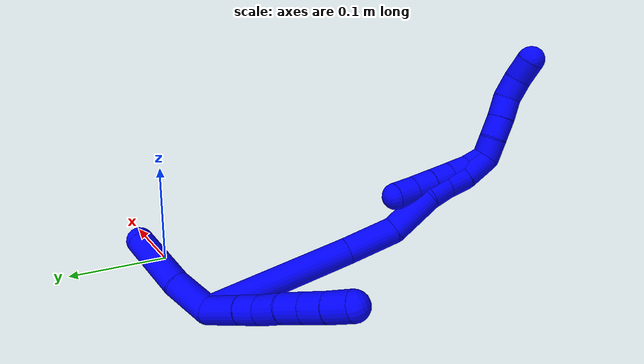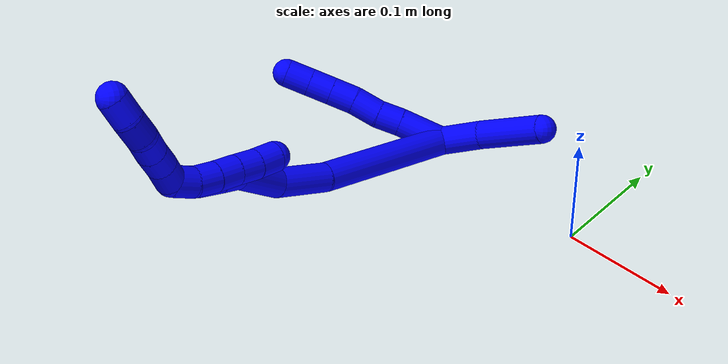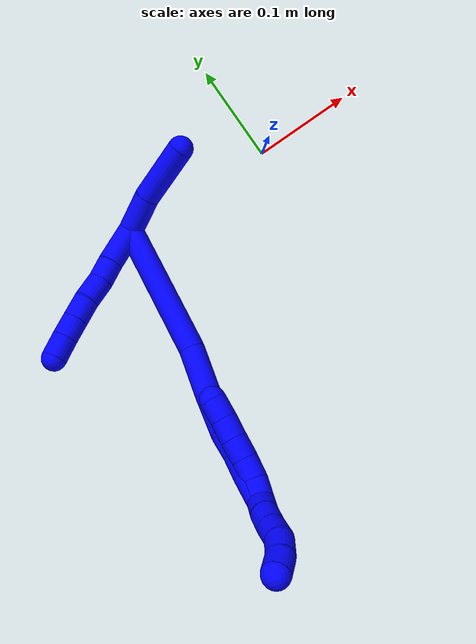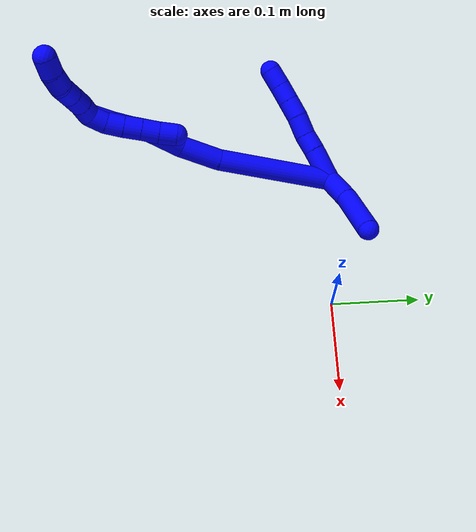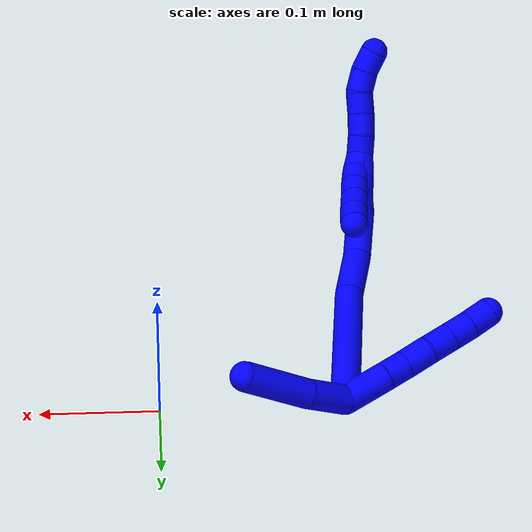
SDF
<sdf version="1.7">
 <world name="default">
  <model name="photoneo_s_sensor">
   <static>1</static>
   <pose>0 0 2 1.57079 1.57079 3.14159</pose>
   <link name="link">
    <inertial><mass>0.1</mass></inertial>
    <sensor name="sensor" type="depth">
     <update_rate>30</update_rate>
     <camera>
      <horizontal_fov>1.22</horizontal_fov>
      <image><width>1920</width><height>1200</height><format>B8G8R8</format></image>
      <clip><near>0.1</near><far>4</far></clip>
      <depth_camera><output>points</output></depth_camera>
     </camera>
     <plugin name="camera_plugin" filename="libgazebo_ros_depth_camera.so">
      <baseline>0.2</baseline>
      <alwaysOn>1</alwaysOn>
      <updateRate>0.0</updateRate>
      <cameraName>camera_ir</cameraName>
      <imageTopicName>/camera/color/image_raw</imageTopicName>
      <cameraInfoTopicName>/camera/color/camera_info</cameraInfoTopicName>
      <depthImageTopicName>/camera/depth/image_raw</depthImageTopicName>
      <depthImageCameraInfoTopicName>/camera/depth/camera_info</depthImageCameraInfoTopicName>
      <pointCloudTopicName>/camera/depth/points</pointCloudTopicName>
      <frameName>fr_optical</frameName>
      <pointCloudCutoff>0.1</pointCloudCutoff>
      <pointCloudCutoffMax>2.0</pointCloudCutoffMax>
      <distortionK1>0</distortionK1>
      <distortionK2>0</distortionK2>
      <distortionK3>0</distortionK3>
      <distortionT1>0</distortionT1>
      <distortionT2>0</distortionT2>
      <CxPrime>0</CxPrime>
      <Cx>0</Cx>
      <Cy>0</Cy>
      <focalLength>0</focalLength>
      <hackBaseline>0</hackBaseline>
     </plugin>
    </sensor>
   </link>
  </model>
  <model name="bin">
   <static>1</static>
   <link name="bottom">
    <collision name="collision-bottom">
     <pose>0 0 -0.01 0 -0 0</pose>
     <geometry><box><size>0.8 0.6 0.02</size></box></geometry>
     <surface>
      <friction><ode><mu>100</mu><mu2>100</mu2></ode></friction>
      <contact><collide_bitmask>65535</collide_bitmask></contact>
     </surface>
    </collision>
   </link>
   <link name="west_wall">
    <collision name="collision-west_wall">
     <pose>-0.41 0 0.1 0 -0 0</pose>
     <geometry><box><size>0.02 0.6 0.2</size></box></geometry>
     <surface>
      <friction><ode><mu>100</mu><mu2>100</mu2></ode></friction>
      <contact><collide_bitmask>65535</collide_bitmask></contact>
     </surface>
    </collision>
   </link>
   <link name="east_wall">
    <collision name="collision-east_wall">
     <pose>0.41 0 0.1 0 -0 0</pose>
     <geometry><box><size>0.02 0.6 0.2</size></box></geometry>
     <surface>
      <friction><ode><mu>100</mu><mu2>100</mu2></ode></friction>
      <contact><collide_bitmask>65535</collide_bitmask></contact>
     </surface>
    </collision>
   </link>
   <link name="south_wall">
    <collision name="collision-south_wall">
     <pose>0 -0.31 0.1 0 -0 0</pose>
     <geometry><box><size>0.8 0.02 0.2</size></box></geometry>
     <surface>
      <friction><ode><mu>100</mu><mu2>100</mu2></ode></friction>
      <contact><collide_bitmask>65535</collide_bitmask></contact>
     </surface>
    </collision>
   </link>
   <link name="north_wall">
    <collision name="collision-north_wall">
     <pose>0 0.31 0.1 0 -0 0</pose>
     <geometry><box><size>0.8 0.02 0.2</size></box></geometry>
     <surface>
      <friction><ode><mu>100</mu><mu2>100</mu2></ode></friction>
      <contact><collide_bitmask>65535</collide_bitmask></contact>
     </surface>
    </collision>
   </link>
  </model>
  <model name="1">
   <static>0</static>
   <link name="1">
    <collision name="collision-cylinder-e_1_2_8">
     <pose>-0.014263 -0.001477 0.013968 0.105359 -0.793061 -0.044148</pose>
     <geometry><cylinder><radius>0.0125</radius><length>0.040037</length></cylinder></geometry>
     <surface>
      <friction><ode><mu>1.16</mu><mu2>1.16</mu2><slip1>0</slip1><slip2>0</slip2></ode></friction>
      <contact><ode><kp>1e+06</kp><kd>1</kd><max_vel>0</max_vel><min_depth>0.001</min_depth></ode></contact>
     </surface>
    </collision>
    <visual name="visual-cylinder-e_1_2_8">
     <pose>-0.014263 -0.001477 0.013968 0.105359 -0.793061 -0.044148</pose>
     <geometry><cylinder><radius>0.0125</radius><length>0.040037</length></cylinder></geometry>
     <material><ambient>0 0 1 1</ambient></material>
    </visual>
    <collision name="collision-cylinder-e_2_8_9">
     <pose>-0.035473 -0.004179 0.035613 0.158178 -0.729283 -0.060486</pose>
     <geometry><cylinder><radius>0.0125</radius><length>0.020851</length></cylinder></geometry>
     <surface>
      <friction><ode><mu>1.16</mu><mu2>1.16</mu2><slip1>0</slip1><slip2>0</slip2></ode></friction>
      <contact><ode><kp>1e+06</kp><kd>1</kd><max_vel>0</max_vel><min_depth>0.001</min_depth></ode></contact>
     </surface>
    </collision>
    <visual name="visual-cylinder-e_2_8_9">
     <pose>-0.035473 -0.004179 0.035613 0.158178 -0.729283 -0.060486</pose>
     <geometry><cylinder><radius>0.0125</radius><length>0.020851</length></cylinder></geometry>
     <material><ambient>0 0 1 1</ambient></material>
    </visual>
    <collision name="collision-cylinder-e_3_9_10">
     <pose>-0.051505 -0.005282 0.051379 -0.01495 -0.84327 0.006706</pose>
     <geometry><cylinder><radius>0.0125</radius><length>0.024331</length></cylinder></geometry>
     <surface>
      <friction><ode><mu>1.16</mu><mu2>1.16</mu2><slip1>0</slip1><slip2>0</slip2></ode></friction>
      <contact><ode><kp>1e+06</kp><kd>1</kd><max_vel>0</max_vel><min_depth>0.001</min_depth></ode></contact>
     </surface>
    </collision>
    <visual name="visual-cylinder-e_3_9_10">
     <pose>-0.051505 -0.005282 0.051379 -0.01495 -0.84327 0.006706</pose>
     <geometry><cylinder><radius>0.0125</radius><length>0.024331</length></cylinder></geometry>
     <material><ambient>0 0 1 1</ambient></material>
    </visual>
    <collision name="collision-cylinder-e_4_10_11">
     <pose>-0.068132 -0.006142 0.067429 0.122533 -0.754654 -0.048613</pose>
     <geometry><cylinder><radius>0.0125</radius><length>0.022017</length></cylinder></geometry>
     <surface>
      <friction><ode><mu>1.16</mu><mu2>1.16</mu2><slip1>0</slip1><slip2>0</slip2></ode></friction>
      <contact><ode><kp>1e+06</kp><kd>1</kd><max_vel>0</max_vel><min_depth>0.001</min_depth></ode></contact>
     </surface>
    </collision>
    <visual name="visual-cylinder-e_4_10_11">
     <pose>-0.068132 -0.006142 0.067429 0.122533 -0.754654 -0.048613</pose>
     <geometry><cylinder><radius>0.0125</radius><length>0.022017</length></cylinder></geometry>
     <material><ambient>0 0 1 1</ambient></material>
    </visual>
    <collision name="collision-cylinder-e_5_11_12">
     <pose>-0.082734 -0.00802 0.08293 0.118575 -0.748896 -0.046645</pose>
     <geometry><cylinder><radius>0.0125</radius><length>0.02074</length></cylinder></geometry>
     <surface>
      <friction><ode><mu>1.16</mu><mu2>1.16</mu2><slip1>0</slip1><slip2>0</slip2></ode></friction>
      <contact><ode><kp>1e+06</kp><kd>1</kd><max_vel>0</max_vel><min_depth>0.001</min_depth></ode></contact>
     </surface>
    </collision>
    <visual name="visual-cylinder-e_5_11_12">
     <pose>-0.082734 -0.00802 0.08293 0.118575 -0.748896 -0.046645</pose>
     <geometry><cylinder><radius>0.0125</radius><length>0.02074</length></cylinder></geometry>
     <material><ambient>0 0 1 1</ambient></material>
    </visual>
    <collision name="collision-cylinder-e_6_12_6">
     <pose>-0.096985 -0.009576 0.098787 0.078838 -0.71153 -0.029307</pose>
     <geometry><cylinder><radius>0.0125</radius><length>0.022024</length></cylinder></geometry>
     <surface>
      <friction><ode><mu>1.16</mu><mu2>1.16</mu2><slip1>0</slip1><slip2>0</slip2></ode></friction>
      <contact><ode><kp>1e+06</kp><kd>1</kd><max_vel>0</max_vel><min_depth>0.001</min_depth></ode></contact>
     </surface>
    </collision>
    <visual name="visual-cylinder-e_6_12_6">
     <pose>-0.096985 -0.009576 0.098787 0.078838 -0.71153 -0.029307</pose>
     <geometry><cylinder><radius>0.0125</radius><length>0.022024</length></cylinder></geometry>
     <material><ambient>0 0 1 1</ambient></material>
    </visual>
    <collision name="collision-cylinder-e_1_2_13">
     <pose>0.010304 0.013974 -0.009724 -2.17875 0.544269 -0.981209</pose>
     <geometry><cylinder><radius>0.0125</radius><length>0.0398</length></cylinder></geometry>
     <surface>
      <friction><ode><mu>1.16</mu><mu2>1.16</mu2><slip1>0</slip1><slip2>0</slip2></ode></friction>
      <contact><ode><kp>1e+06</kp><kd>1</kd><max_vel>0</max_vel><min_depth>0.001</min_depth></ode></contact>
     </surface>
    </collision>
    <visual name="visual-cylinder-e_1_2_13">
     <pose>0.010304 0.013974 -0.009724 -2.17875 0.544269 -0.981209</pose>
     <geometry><cylinder><radius>0.0125</radius><length>0.0398</length></cylinder></geometry>
     <material><ambient>0 0 1 1</ambient></material>
    </visual>
    <collision name="collision-cylinder-e_2_13_5">
     <pose>0.038537 0.049664 -0.030078 -2.026 0.638073 -0.973868</pose>
     <geometry><cylinder><radius>0.0125</radius><length>0.0602</length></cylinder></geometry>
     <surface>
      <friction><ode><mu>1.16</mu><mu2>1.16</mu2><slip1>0</slip1><slip2>0</slip2></ode></friction>
      <contact><ode><kp>1e+06</kp><kd>1</kd><max_vel>0</max_vel><min_depth>0.001</min_depth></ode></contact>
     </surface>
    </collision>
    <visual name="visual-cylinder-e_2_13_5">
     <pose>0.038537 0.049664 -0.030078 -2.026 0.638073 -0.973868</pose>
     <geometry><cylinder><radius>0.0125</radius><length>0.0602</length></cylinder></geometry>
     <material><ambient>0 0 1 1</ambient></material>
    </visual>
    <collision name="collision-cylinder-e_1_2_14">
     <pose>0.011896 -0.000566 0.06716 0.008432 0.175311 0.000741</pose>
     <geometry><cylinder><radius>0.0125</radius><length>0.136416</length></cylinder></geometry>
     <surface>
      <friction><ode><mu>1.16</mu><mu2>1.16</mu2><slip1>0</slip1><slip2>0</slip2></ode></friction>
      <contact><ode><kp>1e+06</kp><kd>1</kd><max_vel>0</max_vel><min_depth>0.001</min_depth></ode></contact>
     </surface>
    </collision>
    <visual name="visual-cylinder-e_1_2_14">
     <pose>0.011896 -0.000566 0.06716 0.008432 0.175311 0.000741</pose>
     <geometry><cylinder><radius>0.0125</radius><length>0.136416</length></cylinder></geometry>
     <material><ambient>0 0 1 1</ambient></material>
    </visual>
    <collision name="collision-cylinder-e_2_14_15">
     <pose>0.024558 0.00012 0.158413 -0.051962 0.03169 -0.000824</pose>
     <geometry><cylinder><radius>0.0125</radius><length>0.048275</length></cylinder></geometry>
     <surface>
      <friction><ode><mu>1.16</mu><mu2>1.16</mu2><slip1>0</slip1><slip2>0</slip2></ode></friction>
      <contact><ode><kp>1e+06</kp><kd>1</kd><max_vel>0</max_vel><min_depth>0.001</min_depth></ode></contact>
     </surface>
    </collision>
    <visual name="visual-cylinder-e_2_14_15">
     <pose>0.024558 0.00012 0.158413 -0.051962 0.03169 -0.000824</pose>
     <geometry><cylinder><radius>0.0125</radius><length>0.048275</length></cylinder></geometry>
     <material><ambient>0 0 1 1</ambient></material>
    </visual>
    <collision name="collision-cylinder-e_3_15_16">
     <pose>0.025273 0.010077 0.203443 -0.393975 -0.002183 0.000436</pose>
     <geometry><cylinder><radius>0.0125</radius><length>0.045349</length></cylinder></geometry>
     <surface>
      <friction><ode><mu>1.16</mu><mu2>1.16</mu2><slip1>0</slip1><slip2>0</slip2></ode></friction>
      <contact><ode><kp>1e+06</kp><kd>1</kd><max_vel>0</max_vel><min_depth>0.001</min_depth></ode></contact>
     </surface>
    </collision>
    <visual name="visual-cylinder-e_3_15_16">
     <pose>0.025273 0.010077 0.203443 -0.393975 -0.002183 0.000436</pose>
     <geometry><cylinder><radius>0.0125</radius><length>0.045349</length></cylinder></geometry>
     <material><ambient>0 0 1 1</ambient></material>
    </visual>
    <collision name="collision-cylinder-e_4_16_17">
     <pose>0.027312 0.020319 0.234346 -0.153102 0.20421 -0.015717</pose>
     <geometry><cylinder><radius>0.0125</radius><length>0.020595</length></cylinder></geometry>
     <surface>
      <friction><ode><mu>1.16</mu><mu2>1.16</mu2><slip1>0</slip1><slip2>0</slip2></ode></friction>
      <contact><ode><kp>1e+06</kp><kd>1</kd><max_vel>0</max_vel><min_depth>0.001</min_depth></ode></contact>
     </surface>
    </collision>
    <visual name="visual-cylinder-e_4_16_17">
     <pose>0.027312 0.020319 0.234346 -0.153102 0.20421 -0.015717</pose>
     <geometry><cylinder><radius>0.0125</radius><length>0.020595</length></cylinder></geometry>
     <material><ambient>0 0 1 1</ambient></material>
    </visual>
    <collision name="collision-cylinder-e_5_17_18">
     <pose>0.030735 0.022565 0.254737 -0.067795 0.127011 -0.004313</pose>
     <geometry><cylinder><radius>0.0125</radius><length>0.021069</length></cylinder></geometry>
     <surface>
      <friction><ode><mu>1.16</mu><mu2>1.16</mu2><slip1>0</slip1><slip2>0</slip2></ode></friction>
      <contact><ode><kp>1e+06</kp><kd>1</kd><max_vel>0</max_vel><min_depth>0.001</min_depth></ode></contact>
     </surface>
    </collision>
    <visual name="visual-cylinder-e_5_17_18">
     <pose>0.030735 0.022565 0.254737 -0.067795 0.127011 -0.004313</pose>
     <geometry><cylinder><radius>0.0125</radius><length>0.021069</length></cylinder></geometry>
     <material><ambient>0 0 1 1</ambient></material>
    </visual>
    <collision name="collision-cylinder-e_6_18_1">
     <pose>0.033605 0.027721 0.278505 -0.321838 0.108799 -0.017678</pose>
     <geometry><cylinder><radius>0.0125</radius><length>0.028296</length></cylinder></geometry>
     <surface>
      <friction><ode><mu>1.16</mu><mu2>1.16</mu2><slip1>0</slip1><slip2>0</slip2></ode></friction>
      <contact><ode><kp>1e+06</kp><kd>1</kd><max_vel>0</max_vel><min_depth>0.001</min_depth></ode></contact>
     </surface>
    </collision>
    <visual name="visual-cylinder-e_6_18_1">
     <pose>0.033605 0.027721 0.278505 -0.321838 0.108799 -0.017678</pose>
     <geometry><cylinder><radius>0.0125</radius><length>0.028296</length></cylinder></geometry>
     <material><ambient>0 0 1 1</ambient></material>
    </visual>
    <collision name="collision-cylinder-e_1_1_19">
     <pose>0.033252 0.040089 0.297654 -0.938126 -0.190039 0.096525</pose>
     <geometry><cylinder><radius>0.0125</radius><length>0.02</length></cylinder></geometry>
     <surface>
      <friction><ode><mu>1.16</mu><mu2>1.16</mu2><slip1>0</slip1><slip2>0</slip2></ode></friction>
      <contact><ode><kp>1e+06</kp><kd>1</kd><max_vel>0</max_vel><min_depth>0.001</min_depth></ode></contact>
     </surface>
    </collision>
    <visual name="visual-cylinder-e_1_1_19">
     <pose>0.033252 0.040089 0.297654 -0.938126 -0.190039 0.096525</pose>
     <geometry><cylinder><radius>0.0125</radius><length>0.02</length></cylinder></geometry>
     <material><ambient>0 0 1 1</ambient></material>
    </visual>
    <collision name="collision-cylinder-e_2_19_20">
     <pose>0.03061 0.055726 0.309775 -0.885115 -0.075442 0.035766</pose>
     <geometry><cylinder><radius>0.0125</radius><length>0.02</length></cylinder></geometry>
     <surface>
      <friction><ode><mu>1.16</mu><mu2>1.16</mu2><slip1>0</slip1><slip2>0</slip2></ode></friction>
      <contact><ode><kp>1e+06</kp><kd>1</kd><max_vel>0</max_vel><min_depth>0.001</min_depth></ode></contact>
     </surface>
    </collision>
    <visual name="visual-cylinder-e_2_19_20">
     <pose>0.03061 0.055726 0.309775 -0.885115 -0.075442 0.035766</pose>
     <geometry><cylinder><radius>0.0125</radius><length>0.02</length></cylinder></geometry>
     <material><ambient>0 0 1 1</ambient></material>
    </visual>
    <collision name="collision-cylinder-e_3_20_21">
     <pose>0.029516 0.07159 0.321879 -0.952816 -0.03397 0.017532</pose>
     <geometry><cylinder><radius>0.0125</radius><length>0.02</length></cylinder></geometry>
     <surface>
      <friction><ode><mu>1.16</mu><mu2>1.16</mu2><slip1>0</slip1><slip2>0</slip2></ode></friction>
      <contact><ode><kp>1e+06</kp><kd>1</kd><max_vel>0</max_vel><min_depth>0.001</min_depth></ode></contact>
     </surface>
    </collision>
    <visual name="visual-cylinder-e_3_20_21">
     <pose>0.029516 0.07159 0.321879 -0.952816 -0.03397 0.017532</pose>
     <geometry><cylinder><radius>0.0125</radius><length>0.02</length></cylinder></geometry>
     <material><ambient>0 0 1 1</ambient></material>
    </visual>
    <collision name="collision-cylinder-e_4_21_22">
     <pose>0.025882 0.086727 0.334015 -0.833818 -0.335724 0.149814</pose>
     <geometry><cylinder><radius>0.0125</radius><length>0.02</length></cylinder></geometry>
     <surface>
      <friction><ode><mu>1.16</mu><mu2>1.16</mu2><slip1>0</slip1><slip2>0</slip2></ode></friction>
      <contact><ode><kp>1e+06</kp><kd>1</kd><max_vel>0</max_vel><min_depth>0.001</min_depth></ode></contact>
     </surface>
    </collision>
    <visual name="visual-cylinder-e_4_21_22">
     <pose>0.025882 0.086727 0.334015 -0.833818 -0.335724 0.149814</pose>
     <geometry><cylinder><radius>0.0125</radius><length>0.02</length></cylinder></geometry>
     <material><ambient>0 0 1 1</ambient></material>
    </visual>
    <collision name="collision-cylinder-e_5_22_4">
     <pose>0.01727 0.099962 0.346082 -0.828926 -0.560738 0.252026</pose>
     <geometry><cylinder><radius>0.0125</radius><length>0.02</length></cylinder></geometry>
     <surface>
      <friction><ode><mu>1.16</mu><mu2>1.16</mu2><slip1>0</slip1><slip2>0</slip2></ode></friction>
      <contact><ode><kp>1e+06</kp><kd>1</kd><max_vel>0</max_vel><min_depth>0.001</min_depth></ode></contact>
     </surface>
    </collision>
    <visual name="visual-cylinder-e_5_22_4">
     <pose>0.01727 0.099962 0.346082 -0.828926 -0.560738 0.252026</pose>
     <geometry><cylinder><radius>0.0125</radius><length>0.02</length></cylinder></geometry>
     <material><ambient>0 0 1 1</ambient></material>
    </visual>
    <collision name="collision-cylinder-e_1_1_23">
     <pose>0.035616 0.03048 0.282003 2.97165 0.04747 0.543616</pose>
     <geometry><cylinder><radius>0.0125</radius><length>0.02</length></cylinder></geometry>
     <surface>
      <friction><ode><mu>1.16</mu><mu2>1.16</mu2><slip1>0</slip1><slip2>0</slip2></ode></friction>
      <contact><ode><kp>1e+06</kp><kd>1</kd><max_vel>0</max_vel><min_depth>0.001</min_depth></ode></contact>
     </surface>
    </collision>
    <visual name="visual-cylinder-e_1_1_23">
     <pose>0.035616 0.03048 0.282003 2.97165 0.04747 0.543616</pose>
     <geometry><cylinder><radius>0.0125</radius><length>0.02</length></cylinder></geometry>
     <material><ambient>0 0 1 1</ambient></material>
    </visual>
    <collision name="collision-cylinder-e_2_23_24">
     <pose>0.034683 0.028879 0.262258 -3.13268 -0.141193 3.01573</pose>
     <geometry><cylinder><radius>0.0125</radius><length>0.02</length></cylinder></geometry>
     <surface>
      <friction><ode><mu>1.16</mu><mu2>1.16</mu2><slip1>0</slip1><slip2>0</slip2></ode></friction>
      <contact><ode><kp>1e+06</kp><kd>1</kd><max_vel>0</max_vel><min_depth>0.001</min_depth></ode></contact>
     </surface>
    </collision>
    <visual name="visual-cylinder-e_2_23_24">
     <pose>0.034683 0.028879 0.262258 -3.13268 -0.141193 3.01573</pose>
     <geometry><cylinder><radius>0.0125</radius><length>0.02</length></cylinder></geometry>
     <material><ambient>0 0 1 1</ambient></material>
    </visual>
    <collision name="collision-cylinder-e_3_24_25">
     <pose>0.03132 0.029214 0.242554 -3.11643 -0.196826 2.88809</pose>
     <geometry><cylinder><radius>0.0125</radius><length>0.02</length></cylinder></geometry>
     <surface>
      <friction><ode><mu>1.16</mu><mu2>1.16</mu2><slip1>0</slip1><slip2>0</slip2></ode></friction>
      <contact><ode><kp>1e+06</kp><kd>1</kd><max_vel>0</max_vel><min_depth>0.001</min_depth></ode></contact>
     </surface>
    </collision>
    <visual name="visual-cylinder-e_3_24_25">
     <pose>0.03132 0.029214 0.242554 -3.11643 -0.196826 2.88809</pose>
     <geometry><cylinder><radius>0.0125</radius><length>0.02</length></cylinder></geometry>
     <material><ambient>0 0 1 1</ambient></material>
    </visual>
    <collision name="collision-cylinder-e_4_25_26">
     <pose>0.027661 0.029646 0.222898 -3.12285 -0.17117 2.924</pose>
     <geometry><cylinder><radius>0.0125</radius><length>0.02</length></cylinder></geometry>
     <surface>
      <friction><ode><mu>1.16</mu><mu2>1.16</mu2><slip1>0</slip1><slip2>0</slip2></ode></friction>
      <contact><ode><kp>1e+06</kp><kd>1</kd><max_vel>0</max_vel><min_depth>0.001</min_depth></ode></contact>
     </surface>
    </collision>
    <visual name="visual-cylinder-e_4_25_26">
     <pose>0.027661 0.029646 0.222898 -3.12285 -0.17117 2.924</pose>
     <geometry><cylinder><radius>0.0125</radius><length>0.02</length></cylinder></geometry>
     <material><ambient>0 0 1 1</ambient></material>
    </visual>
    <collision name="collision-cylinder-e_5_26_3">
     <pose>0.023692 0.030442 0.203325 -3.07877 -0.228583 2.60719</pose>
     <geometry><cylinder><radius>0.0125</radius><length>0.02</length></cylinder></geometry>
     <surface>
      <friction><ode><mu>1.16</mu><mu2>1.16</mu2><slip1>0</slip1><slip2>0</slip2></ode></friction>
      <contact><ode><kp>1e+06</kp><kd>1</kd><max_vel>0</max_vel><min_depth>0.001</min_depth></ode></contact>
     </surface>
    </collision>
    <visual name="visual-cylinder-e_5_26_3">
     <pose>0.023692 0.030442 0.203325 -3.07877 -0.228583 2.60719</pose>
     <geometry><cylinder><radius>0.0125</radius><length>0.02</length></cylinder></geometry>
     <material><ambient>0 0 1 1</ambient></material>
    </visual>
    <collision name="collision-sphere-3">
     <pose>0.021426 0.031053 0.193604 0 -0 0</pose>
     <geometry><sphere><radius>0.0125</radius></sphere></geometry>
     <surface>
      <friction><ode><mu>1.16</mu><mu2>1.16</mu2><slip1>0</slip1><slip2>0</slip2></ode></friction>
      <contact><ode><kp>1e+06</kp><kd>1</kd><max_vel>0</max_vel><min_depth>0.001</min_depth></ode></contact>
     </surface>
    </collision>
    <visual name="visual-sphere-3">
     <pose>0.021426 0.031053 0.193604 0 -0 0</pose>
     <geometry><sphere><radius>0.0125</radius></sphere></geometry>
     <material><ambient>0 0 1 1</ambient></material>
    </visual>
    <collision name="collision-sphere-26">
     <pose>0.025958 0.02983 0.213046 0 -0 0</pose>
     <geometry><sphere><radius>0.0125</radius></sphere></geometry>
     <surface>
      <friction><ode><mu>1.16</mu><mu2>1.16</mu2><slip1>0</slip1><slip2>0</slip2></ode></friction>
      <contact><ode><kp>1e+06</kp><kd>1</kd><max_vel>0</max_vel><min_depth>0.001</min_depth></ode></contact>
     </surface>
    </collision>
    <visual name="visual-sphere-26">
     <pose>0.025958 0.02983 0.213046 0 -0 0</pose>
     <geometry><sphere><radius>0.0125</radius></sphere></geometry>
     <material><ambient>0 0 1 1</ambient></material>
    </visual>
    <collision name="collision-sphere-25">
     <pose>0.029365 0.029461 0.23275 0 -0 0</pose>
     <geometry><sphere><radius>0.0125</radius></sphere></geometry>
     <surface>
      <friction><ode><mu>1.16</mu><mu2>1.16</mu2><slip1>0</slip1><slip2>0</slip2></ode></friction>
      <contact><ode><kp>1e+06</kp><kd>1</kd><max_vel>0</max_vel><min_depth>0.001</min_depth></ode></contact>
     </surface>
    </collision>
    <visual name="visual-sphere-25">
     <pose>0.029365 0.029461 0.23275 0 -0 0</pose>
     <geometry><sphere><radius>0.0125</radius></sphere></geometry>
     <material><ambient>0 0 1 1</ambient></material>
    </visual>
    <collision name="collision-sphere-24">
     <pose>0.033276 0.028968 0.252358 0 -0 0</pose>
     <geometry><sphere><radius>0.0125</radius></sphere></geometry>
     <surface>
      <friction><ode><mu>1.16</mu><mu2>1.16</mu2><slip1>0</slip1><slip2>0</slip2></ode></friction>
      <contact><ode><kp>1e+06</kp><kd>1</kd><max_vel>0</max_vel><min_depth>0.001</min_depth></ode></contact>
     </surface>
    </collision>
    <visual name="visual-sphere-24">
     <pose>0.033276 0.028968 0.252358 0 -0 0</pose>
     <geometry><sphere><radius>0.0125</radius></sphere></geometry>
     <material><ambient>0 0 1 1</ambient></material>
    </visual>
    <collision name="collision-sphere-23">
     <pose>0.03609 0.028791 0.272158 0 -0 0</pose>
     <geometry><sphere><radius>0.0125</radius></sphere></geometry>
     <surface>
      <friction><ode><mu>1.16</mu><mu2>1.16</mu2><slip1>0</slip1><slip2>0</slip2></ode></friction>
      <contact><ode><kp>1e+06</kp><kd>1</kd><max_vel>0</max_vel><min_depth>0.001</min_depth></ode></contact>
     </surface>
    </collision>
    <visual name="visual-sphere-23">
     <pose>0.03609 0.028791 0.272158 0 -0 0</pose>
     <geometry><sphere><radius>0.0125</radius></sphere></geometry>
     <material><ambient>0 0 1 1</ambient></material>
    </visual>
    <collision name="collision-sphere-4">
     <pose>0.011952 0.106205 0.351804 0 -0 0</pose>
     <geometry><sphere><radius>0.0125</radius></sphere></geometry>
     <surface>
      <friction><ode><mu>1.16</mu><mu2>1.16</mu2><slip1>0</slip1><slip2>0</slip2></ode></friction>
      <contact><ode><kp>1e+06</kp><kd>1</kd><max_vel>0</max_vel><min_depth>0.001</min_depth></ode></contact>
     </surface>
    </collision>
    <visual name="visual-sphere-4">
     <pose>0.011952 0.106205 0.351804 0 -0 0</pose>
     <geometry><sphere><radius>0.0125</radius></sphere></geometry>
     <material><ambient>0 0 1 1</ambient></material>
    </visual>
    <collision name="collision-sphere-22">
     <pose>0.022588 0.093719 0.34036 0 -0 0</pose>
     <geometry><sphere><radius>0.0125</radius></sphere></geometry>
     <surface>
      <friction><ode><mu>1.16</mu><mu2>1.16</mu2><slip1>0</slip1><slip2>0</slip2></ode></friction>
      <contact><ode><kp>1e+06</kp><kd>1</kd><max_vel>0</max_vel><min_depth>0.001</min_depth></ode></contact>
     </surface>
    </collision>
    <visual name="visual-sphere-22">
     <pose>0.022588 0.093719 0.34036 0 -0 0</pose>
     <geometry><sphere><radius>0.0125</radius></sphere></geometry>
     <material><ambient>0 0 1 1</ambient></material>
    </visual>
    <collision name="collision-sphere-21">
     <pose>0.029177 0.079736 0.32767 0 -0 0</pose>
     <geometry><sphere><radius>0.0125</radius></sphere></geometry>
     <surface>
      <friction><ode><mu>1.16</mu><mu2>1.16</mu2><slip1>0</slip1><slip2>0</slip2></ode></friction>
      <contact><ode><kp>1e+06</kp><kd>1</kd><max_vel>0</max_vel><min_depth>0.001</min_depth></ode></contact>
     </surface>
    </collision>
    <visual name="visual-sphere-21">
     <pose>0.029177 0.079736 0.32767 0 -0 0</pose>
     <geometry><sphere><radius>0.0125</radius></sphere></geometry>
     <material><ambient>0 0 1 1</ambient></material>
    </visual>
    <collision name="collision-sphere-20">
     <pose>0.029856 0.063444 0.316089 0 -0 0</pose>
     <geometry><sphere><radius>0.0125</radius></sphere></geometry>
     <surface>
      <friction><ode><mu>1.16</mu><mu2>1.16</mu2><slip1>0</slip1><slip2>0</slip2></ode></friction>
      <contact><ode><kp>1e+06</kp><kd>1</kd><max_vel>0</max_vel><min_depth>0.001</min_depth></ode></contact>
     </surface>
    </collision>
    <visual name="visual-sphere-20">
     <pose>0.029856 0.063444 0.316089 0 -0 0</pose>
     <geometry><sphere><radius>0.0125</radius></sphere></geometry>
     <material><ambient>0 0 1 1</ambient></material>
    </visual>
    <collision name="collision-sphere-12">
     <pose>-0.089794 -0.008919 0.090473 0 -0 0</pose>
     <geometry><sphere><radius>0.0125</radius></sphere></geometry>
     <surface>
      <friction><ode><mu>1.16</mu><mu2>1.16</mu2><slip1>0</slip1><slip2>0</slip2></ode></friction>
      <contact><ode><kp>1e+06</kp><kd>1</kd><max_vel>0</max_vel><min_depth>0.001</min_depth></ode></contact>
     </surface>
    </collision>
    <visual name="visual-sphere-12">
     <pose>-0.089794 -0.008919 0.090473 0 -0 0</pose>
     <geometry><sphere><radius>0.0125</radius></sphere></geometry>
     <material><ambient>0 0 1 1</ambient></material>
    </visual>
    <collision name="collision-sphere-11">
     <pose>-0.075673 -0.007122 0.075388 0 -0 0</pose>
     <geometry><sphere><radius>0.0125</radius></sphere></geometry>
     <surface>
      <friction><ode><mu>1.16</mu><mu2>1.16</mu2><slip1>0</slip1><slip2>0</slip2></ode></friction>
      <contact><ode><kp>1e+06</kp><kd>1</kd><max_vel>0</max_vel><min_depth>0.001</min_depth></ode></contact>
     </surface>
    </collision>
    <visual name="visual-sphere-11">
     <pose>-0.075673 -0.007122 0.075388 0 -0 0</pose>
     <geometry><sphere><radius>0.0125</radius></sphere></geometry>
     <material><ambient>0 0 1 1</ambient></material>
    </visual>
    <collision name="collision-sphere-10">
     <pose>-0.060591 -0.005161 0.059469 0 -0 0</pose>
     <geometry><sphere><radius>0.0125</radius></sphere></geometry>
     <surface>
      <friction><ode><mu>1.16</mu><mu2>1.16</mu2><slip1>0</slip1><slip2>0</slip2></ode></friction>
      <contact><ode><kp>1e+06</kp><kd>1</kd><max_vel>0</max_vel><min_depth>0.001</min_depth></ode></contact>
     </surface>
    </collision>
    <visual name="visual-sphere-10">
     <pose>-0.060591 -0.005161 0.059469 0 -0 0</pose>
     <geometry><sphere><radius>0.0125</radius></sphere></geometry>
     <material><ambient>0 0 1 1</ambient></material>
    </visual>
    <collision name="collision-sphere-9">
     <pose>-0.04242 -0.005403 0.04329 0 -0 0</pose>
     <geometry><sphere><radius>0.0125</radius></sphere></geometry>
     <surface>
      <friction><ode><mu>1.16</mu><mu2>1.16</mu2><slip1>0</slip1><slip2>0</slip2></ode></friction>
      <contact><ode><kp>1e+06</kp><kd>1</kd><max_vel>0</max_vel><min_depth>0.001</min_depth></ode></contact>
     </surface>
    </collision>
    <visual name="visual-sphere-9">
     <pose>-0.04242 -0.005403 0.04329 0 -0 0</pose>
     <geometry><sphere><radius>0.0125</radius></sphere></geometry>
     <material><ambient>0 0 1 1</ambient></material>
    </visual>
    <collision name="collision-sphere-2">
     <geometry><sphere><radius>0.0125</radius></sphere></geometry>
     <surface>
      <friction><ode><mu>1.16</mu><mu2>1.16</mu2><slip1>0</slip1><slip2>0</slip2></ode></friction>
      <contact><ode><kp>1e+06</kp><kd>1</kd><max_vel>0</max_vel><min_depth>0.001</min_depth></ode></contact>
     </surface>
    </collision>
    <visual name="visual-sphere-2">
     <geometry><sphere><radius>0.0125</radius></sphere></geometry>
     <material><ambient>0 0 1 1</ambient></material>
    </visual>
    <collision name="collision-sphere-19">
     <pose>0.031363 0.048008 0.303461 0 -0 0</pose>
     <geometry><sphere><radius>0.0125</radius></sphere></geometry>
     <surface>
      <friction><ode><mu>1.16</mu><mu2>1.16</mu2><slip1>0</slip1><slip2>0</slip2></ode></friction>
      <contact><ode><kp>1e+06</kp><kd>1</kd><max_vel>0</max_vel><min_depth>0.001</min_depth></ode></contact>
     </surface>
    </collision>
    <visual name="visual-sphere-19">
     <pose>0.031363 0.048008 0.303461 0 -0 0</pose>
     <geometry><sphere><radius>0.0125</radius></sphere></geometry>
     <material><ambient>0 0 1 1</ambient></material>
    </visual>
    <collision name="collision-sphere-8">
     <pose>-0.028526 -0.002954 0.027937 0 -0 0</pose>
     <geometry><sphere><radius>0.0125</radius></sphere></geometry>
     <surface>
      <friction><ode><mu>1.16</mu><mu2>1.16</mu2><slip1>0</slip1><slip2>0</slip2></ode></friction>
      <contact><ode><kp>1e+06</kp><kd>1</kd><max_vel>0</max_vel><min_depth>0.001</min_depth></ode></contact>
     </surface>
    </collision>
    <visual name="visual-sphere-8">
     <pose>-0.028526 -0.002954 0.027937 0 -0 0</pose>
     <geometry><sphere><radius>0.0125</radius></sphere></geometry>
     <material><ambient>0 0 1 1</ambient></material>
    </visual>
    <collision name="collision-sphere-6">
     <pose>-0.104176 -0.010233 0.107101 0 -0 0</pose>
     <geometry><sphere><radius>0.0125</radius></sphere></geometry>
     <surface>
      <friction><ode><mu>1.16</mu><mu2>1.16</mu2><slip1>0</slip1><slip2>0</slip2></ode></friction>
      <contact><ode><kp>1e+06</kp><kd>1</kd><max_vel>0</max_vel><min_depth>0.001</min_depth></ode></contact>
     </surface>
    </collision>
    <visual name="visual-sphere-6">
     <pose>-0.104176 -0.010233 0.107101 0 -0 0</pose>
     <geometry><sphere><radius>0.0125</radius></sphere></geometry>
     <material><ambient>0 0 1 1</ambient></material>
    </visual>
    <collision name="collision-sphere-13">
     <pose>0.020608 0.027948 -0.019449 0 -0 0</pose>
     <geometry><sphere><radius>0.0125</radius></sphere></geometry>
     <surface>
      <friction><ode><mu>1.16</mu><mu2>1.16</mu2><slip1>0</slip1><slip2>0</slip2></ode></friction>
      <contact><ode><kp>1e+06</kp><kd>1</kd><max_vel>0</max_vel><min_depth>0.001</min_depth></ode></contact>
     </surface>
    </collision>
    <visual name="visual-sphere-13">
     <pose>0.020608 0.027948 -0.019449 0 -0 0</pose>
     <geometry><sphere><radius>0.0125</radius></sphere></geometry>
     <material><ambient>0 0 1 1</ambient></material>
    </visual>
    <collision name="collision-sphere-5">
     <pose>0.056466 0.07138 -0.040708 0 -0 0</pose>
     <geometry><sphere><radius>0.0125</radius></sphere></geometry>
     <surface>
      <friction><ode><mu>1.16</mu><mu2>1.16</mu2><slip1>0</slip1><slip2>0</slip2></ode></friction>
      <contact><ode><kp>1e+06</kp><kd>1</kd><max_vel>0</max_vel><min_depth>0.001</min_depth></ode></contact>
     </surface>
    </collision>
    <visual name="visual-sphere-5">
     <pose>0.056466 0.07138 -0.040708 0 -0 0</pose>
     <geometry><sphere><radius>0.0125</radius></sphere></geometry>
     <material><ambient>0 0 1 1</ambient></material>
    </visual>
    <collision name="collision-sphere-14">
     <pose>0.023793 -0.001133 0.13432 0 -0 0</pose>
     <geometry><sphere><radius>0.0125</radius></sphere></geometry>
     <surface>
      <friction><ode><mu>1.16</mu><mu2>1.16</mu2><slip1>0</slip1><slip2>0</slip2></ode></friction>
      <contact><ode><kp>1e+06</kp><kd>1</kd><max_vel>0</max_vel><min_depth>0.001</min_depth></ode></contact>
     </surface>
    </collision>
    <visual name="visual-sphere-14">
     <pose>0.023793 -0.001133 0.13432 0 -0 0</pose>
     <geometry><sphere><radius>0.0125</radius></sphere></geometry>
     <material><ambient>0 0 1 1</ambient></material>
    </visual>
    <collision name="collision-sphere-15">
     <pose>0.025323 0.001374 0.182506 0 -0 0</pose>
     <geometry><sphere><radius>0.0125</radius></sphere></geometry>
     <surface>
      <friction><ode><mu>1.16</mu><mu2>1.16</mu2><slip1>0</slip1><slip2>0</slip2></ode></friction>
      <contact><ode><kp>1e+06</kp><kd>1</kd><max_vel>0</max_vel><min_depth>0.001</min_depth></ode></contact>
     </surface>
    </collision>
    <visual name="visual-sphere-15">
     <pose>0.025323 0.001374 0.182506 0 -0 0</pose>
     <geometry><sphere><radius>0.0125</radius></sphere></geometry>
     <material><ambient>0 0 1 1</ambient></material>
    </visual>
    <collision name="collision-sphere-16">
     <pose>0.025224 0.018781 0.22438 0 -0 0</pose>
     <geometry><sphere><radius>0.0125</radius></sphere></geometry>
     <surface>
      <friction><ode><mu>1.16</mu><mu2>1.16</mu2><slip1>0</slip1><slip2>0</slip2></ode></friction>
      <contact><ode><kp>1e+06</kp><kd>1</kd><max_vel>0</max_vel><min_depth>0.001</min_depth></ode></contact>
     </surface>
    </collision>
    <visual name="visual-sphere-16">
     <pose>0.025224 0.018781 0.22438 0 -0 0</pose>
     <geometry><sphere><radius>0.0125</radius></sphere></geometry>
     <material><ambient>0 0 1 1</ambient></material>
    </visual>
    <collision name="collision-sphere-17">
     <pose>0.0294 0.021857 0.244312 0 -0 0</pose>
     <geometry><sphere><radius>0.0125</radius></sphere></geometry>
     <surface>
      <friction><ode><mu>1.16</mu><mu2>1.16</mu2><slip1>0</slip1><slip2>0</slip2></ode></friction>
      <contact><ode><kp>1e+06</kp><kd>1</kd><max_vel>0</max_vel><min_depth>0.001</min_depth></ode></contact>
     </surface>
    </collision>
    <visual name="visual-sphere-17">
     <pose>0.0294 0.021857 0.244312 0 -0 0</pose>
     <geometry><sphere><radius>0.0125</radius></sphere></geometry>
     <material><ambient>0 0 1 1</ambient></material>
    </visual>
    <collision name="collision-sphere-18">
     <pose>0.032069 0.023272 0.265163 0 -0 0</pose>
     <geometry><sphere><radius>0.0125</radius></sphere></geometry>
     <surface>
      <friction><ode><mu>1.16</mu><mu2>1.16</mu2><slip1>0</slip1><slip2>0</slip2></ode></friction>
      <contact><ode><kp>1e+06</kp><kd>1</kd><max_vel>0</max_vel><min_depth>0.001</min_depth></ode></contact>
     </surface>
    </collision>
    <visual name="visual-sphere-18">
     <pose>0.032069 0.023272 0.265163 0 -0 0</pose>
     <geometry><sphere><radius>0.0125</radius></sphere></geometry>
     <material><ambient>0 0 1 1</ambient></material>
    </visual>
    <collision name="collision-sphere-1">
     <pose>0.035141 0.03217 0.291848 0 -0 0</pose>
     <geometry><sphere><radius>0.0125</radius></sphere></geometry>
     <surface>
      <friction><ode><mu>1.16</mu><mu2>1.16</mu2><slip1>0</slip1><slip2>0</slip2></ode></friction>
      <contact><ode><kp>1e+06</kp><kd>1</kd><max_vel>0</max_vel><min_depth>0.001</min_depth></ode></contact>
     </surface>
    </collision>
    <visual name="visual-sphere-1">
     <pose>0.035141 0.03217 0.291848 0 -0 0</pose>
     <geometry><sphere><radius>0.0125</radius></sphere></geometry>
     <material><ambient>0 0 1 1</ambient></material>
    </visual>
    <inertial>
     <pose>0.00896 0.019837 0.141723 0 -0 0</pose>
     <mass>0.75</mass>
     <inertia>
      <ixx>0.000247</ixx>
      <ixy>0</ixy>
      <ixz>0</ixz>
      <iyy>0.000269</iyy>
      <iyz>0</iyz>
      <izz>-4.4e-05</izz>
     </inertia>
    </inertial>
   </link>
   <pose>-0.153617 0.010674 0.0115 1.25154 0.225511 -0.369104</pose>
  </model>
 </world>
</sdf>
